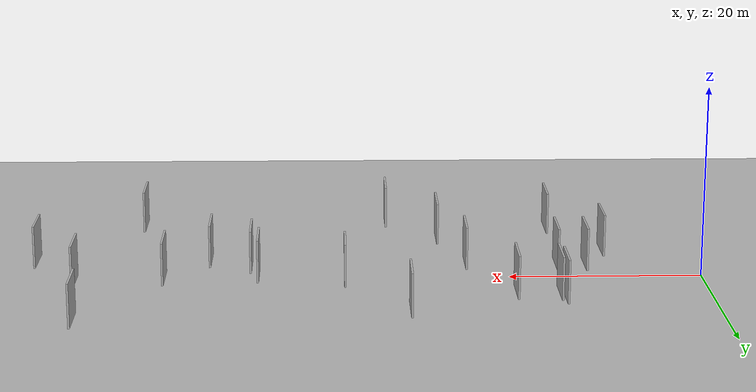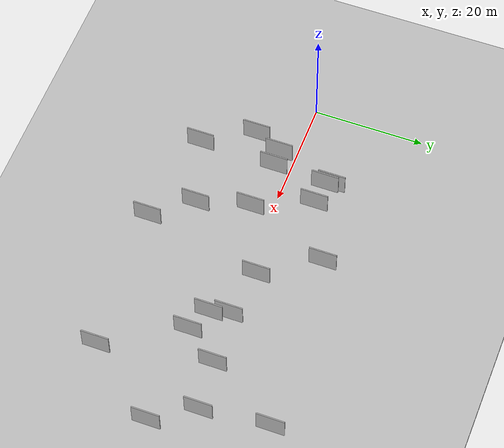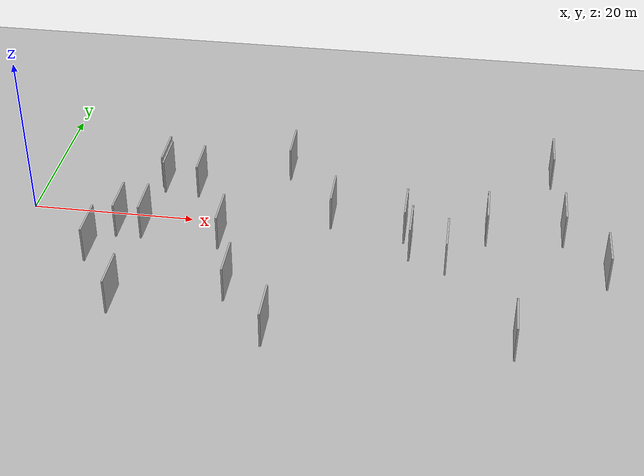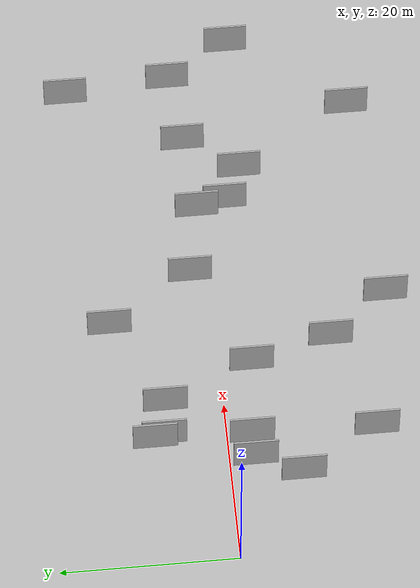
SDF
<?xml version="1.0" encoding="utf-8"?>

<sdf version="1.6">

   <world name="default">

      <gui fullscreen="0">

         <camera name="user_camera">

            <pose>-15 0 4.57585 0 0 0</pose>

            <view_controller>orbit</view_controller>

         </camera>

      </gui>

      <scene>

         <sky>

           <clouds>

             <speed>12</speed>

           </clouds>

         </sky>

         <ambient>0.4 0.4 0.4 1</ambient>

         <background>0.7 0.7 0.7 1</background>

         <shadows>1</shadows>

      </scene>

      <gravity>0 0 -9.8066</gravity>

      <magnetic_field>6e-06 2.3e-05 -4.2e-05</magnetic_field>

      <physics default="0" name="default_physics" type="ode">

         <ode>

            <solver>

               <type>quick</type>

               <iters>10</iters>

               <sor>1.0</sor>

               <use_dynamic_moi_rescaling>0</use_dynamic_moi_rescaling>

            </solver>

            <constraints>

               <cfm>0</cfm>

               <erp>0.2</erp>

               <contact_max_correcting_vel>100</contact_max_correcting_vel>

               <contact_surface_layer>0.001</contact_surface_layer>

            </constraints>

         </ode>

         <max_step_size>0.004</max_step_size>

         <real_time_factor>1</real_time_factor>

         <real_time_update_rate>250</real_time_update_rate>

      </physics>

      <light name="sun" type="directional">

         <cast_shadows>1</cast_shadows>

         <pose>0 0 10 0 0 0</pose>

         <diffuse>0.8 0.8 0.8 1</diffuse>

         <specular>0.2 0.2 0.2 1</specular>

         <attenuation>

            <range>1000</range>

            <constant>0.9</constant>

            <linear>0.01</linear>

            <quadratic>0.001</quadratic>

         </attenuation>

         <direction>-0.5 0.1 -0.9</direction>

      </light>

      <include>

         <name>ground_plane_1</name>

         <uri>model://HANNAS_ground_plane</uri>

         <pose>0 0 0  0 0 0</pose>

      </include>

      <include>

         <name>ground_plane_2</name>

         <uri>model://HANNAS_ground_plane</uri>

         <pose>100 0 0  0 0 0</pose>

      </include>

      <model name="HANNAS_wall_1">

         <static>1</static>

         <pose frame="">55.7279 1.5356 0.0 0.000000 0.000000 1.570796</pose>

         <link name="link">

            <pose frame="">0 0 2.50 0 0 0</pose>

            <collision name="collision">

               <geometry>

                  <box>

                     <size>5.00 0.2 5.00</size>

                  </box>

               </geometry>

               <max_contacts>10</max_contacts>

               <surface>

                  <contact>

                     <ode/>

                  </contact>

                  <bounce/>

                  <friction>

                     <torsional>

                        <ode/>

                     </torsional>

                     <ode/>

                  </friction>

               </surface>

            </collision>

            <visual name="visual">

               <cast_shadows>0</cast_shadows>

               <geometry>

                  <box>

                     <size>5.00 0.2 5.00</size>

                  </box>

               </geometry>

               <material>

                  <script>

                     <uri>model://HANNAS_wall/materials/scripts</uri>

                     <uri>model://HANNAS_wall/materials/textures</uri>

                     <name>vrc/HANNAS_wall</name>

                  </script>

               </material>

            </visual>

            <self_collide>0</self_collide>

            <enable_wind>0</enable_wind>

            <kinematic>0</kinematic>

         </link>

      </model>

      <model name="HANNAS_wall_2">

         <static>1</static>

         <pose frame="">37.1053 2.2786 0.0 0.000000 0.000000 1.570796</pose>

         <link name="link">

            <pose frame="">0 0 2.50 0 0 0</pose>

            <collision name="collision">

               <geometry>

                  <box>

                     <size>5.00 0.2 5.00</size>

                  </box>

               </geometry>

               <max_contacts>10</max_contacts>

               <surface>

                  <contact>

                     <ode/>

                  </contact>

                  <bounce/>

                  <friction>

                     <torsional>

                        <ode/>

                     </torsional>

                     <ode/>

                  </friction>

               </surface>

            </collision>

            <visual name="visual">

               <cast_shadows>0</cast_shadows>

               <geometry>

                  <box>

                     <size>5.00 0.2 5.00</size>

                  </box>

               </geometry>

               <material>

                  <script>

                     <uri>model://HANNAS_wall/materials/scripts</uri>

                     <uri>model://HANNAS_wall/materials/textures</uri>

                     <name>vrc/HANNAS_wall</name>

                  </script>

               </material>

            </visual>

            <self_collide>0</self_collide>

            <enable_wind>0</enable_wind>

            <kinematic>0</kinematic>

         </link>

      </model>

      <model name="HANNAS_wall_3">

         <static>1</static>

         <pose frame="">24.3750 -3.5481 0.0 0.000000 0.000000 1.570796</pose>

         <link name="link">

            <pose frame="">0 0 2.50 0 0 0</pose>

            <collision name="collision">

               <geometry>

                  <box>

                     <size>5.00 0.2 5.00</size>

                  </box>

               </geometry>

               <max_contacts>10</max_contacts>

               <surface>

                  <contact>

                     <ode/>

                  </contact>

                  <bounce/>

                  <friction>

                     <torsional>

                        <ode/>

                     </torsional>

                     <ode/>

                  </friction>

               </surface>

            </collision>

            <visual name="visual">

               <cast_shadows>0</cast_shadows>

               <geometry>

                  <box>

                     <size>5.00 0.2 5.00</size>

                  </box>

               </geometry>

               <material>

                  <script>

                     <uri>model://HANNAS_wall/materials/scripts</uri>

                     <uri>model://HANNAS_wall/materials/textures</uri>

                     <name>vrc/HANNAS_wall</name>

                  </script>

               </material>

            </visual>

            <self_collide>0</self_collide>

            <enable_wind>0</enable_wind>

            <kinematic>0</kinematic>

         </link>

      </model>

      <model name="HANNAS_wall_4">

         <static>1</static>

         <pose frame="">63.5982 14.6535 0.0 0.000000 0.000000 1.570796</pose>

         <link name="link">

            <pose frame="">0 0 2.50 0 0 0</pose>

            <collision name="collision">

               <geometry>

                  <box>

                     <size>5.00 0.2 5.00</size>

                  </box>

               </geometry>

               <max_contacts>10</max_contacts>

               <surface>

                  <contact>

                     <ode/>

                  </contact>

                  <bounce/>

                  <friction>

                     <torsional>

                        <ode/>

                     </torsional>

                     <ode/>

                  </friction>

               </surface>

            </collision>

            <visual name="visual">

               <cast_shadows>0</cast_shadows>

               <geometry>

                  <box>

                     <size>5.00 0.2 5.00</size>

                  </box>

               </geometry>

               <material>

                  <script>

                     <uri>model://HANNAS_wall/materials/scripts</uri>

                     <uri>model://HANNAS_wall/materials/textures</uri>

                     <name>vrc/HANNAS_wall</name>

                  </script>

               </material>

            </visual>

            <self_collide>0</self_collide>

            <enable_wind>0</enable_wind>

            <kinematic>0</kinematic>

         </link>

      </model>

      <model name="HANNAS_wall_5">

         <static>1</static>

         <pose frame="">64.8098 2.5495 0.0 0.000000 0.000000 1.570796</pose>

         <link name="link">

            <pose frame="">0 0 2.50 0 0 0</pose>

            <collision name="collision">

               <geometry>

                  <box>

                     <size>5.00 0.2 5.00</size>

                  </box>

               </geometry>

               <max_contacts>10</max_contacts>

               <surface>

                  <contact>

                     <ode/>

                  </contact>

                  <bounce/>

                  <friction>

                     <torsional>

                        <ode/>

                     </torsional>

                     <ode/>

                  </friction>

               </surface>

            </collision>

            <visual name="visual">

               <cast_shadows>0</cast_shadows>

               <geometry>

                  <box>

                     <size>5.00 0.2 5.00</size>

                  </box>

               </geometry>

               <material>

                  <script>

                     <uri>model://HANNAS_wall/materials/scripts</uri>

                     <uri>model://HANNAS_wall/materials/textures</uri>

                     <name>vrc/HANNAS_wall</name>

                  </script>

               </material>

            </visual>

            <self_collide>0</self_collide>

            <enable_wind>0</enable_wind>

            <kinematic>0</kinematic>

         </link>

      </model>

      <model name="HANNAS_wall_6">

         <static>1</static>

         <pose frame="">15.4837 7.0637 0.0 0.000000 0.000000 1.570796</pose>

         <link name="link">

            <pose frame="">0 0 2.50 0 0 0</pose>

            <collision name="collision">

               <geometry>

                  <box>

                     <size>5.00 0.2 5.00</size>

                  </box>

               </geometry>

               <max_contacts>10</max_contacts>

               <surface>

                  <contact>

                     <ode/>

                  </contact>

                  <bounce/>

                  <friction>

                     <torsional>

                        <ode/>

                     </torsional>

                     <ode/>

                  </friction>

               </surface>

            </collision>

            <visual name="visual">

               <cast_shadows>0</cast_shadows>

               <geometry>

                  <box>

                     <size>5.00 0.2 5.00</size>

                  </box>

               </geometry>

               <material>

                  <script>

                     <uri>model://HANNAS_wall/materials/scripts</uri>

                     <uri>model://HANNAS_wall/materials/textures</uri>

                     <name>vrc/HANNAS_wall</name>

                  </script>

               </material>

            </visual>

            <self_collide>0</self_collide>

            <enable_wind>0</enable_wind>

            <kinematic>0</kinematic>

         </link>

      </model>

      <model name="HANNAS_wall_7">

         <static>1</static>

         <pose frame="">26.9392 -12.7928 0.0 0.000000 0.000000 1.570796</pose>

         <link name="link">

            <pose frame="">0 0 2.50 0 0 0</pose>

            <collision name="collision">

               <geometry>

                  <box>

                     <size>5.00 0.2 5.00</size>

                  </box>

               </geometry>

               <max_contacts>10</max_contacts>

               <surface>

                  <contact>

                     <ode/>

                  </contact>

                  <bounce/>

                  <friction>

                     <torsional>

                        <ode/>

                     </torsional>

                     <ode/>

                  </friction>

               </surface>

            </collision>

            <visual name="visual">

               <cast_shadows>0</cast_shadows>

               <geometry>

                  <box>

                     <size>5.00 0.2 5.00</size>

                  </box>

               </geometry>

               <material>

                  <script>

                     <uri>model://HANNAS_wall/materials/scripts</uri>

                     <uri>model://HANNAS_wall/materials/textures</uri>

                     <name>vrc/HANNAS_wall</name>

                  </script>

               </material>

            </visual>

            <self_collide>0</self_collide>

            <enable_wind>0</enable_wind>

            <kinematic>0</kinematic>

         </link>

      </model>

      <model name="HANNAS_wall_8">

         <static>1</static>

         <pose frame="">30.7021 12.0385 0.0 0.000000 0.000000 1.570796</pose>

         <link name="link">

            <pose frame="">0 0 2.50 0 0 0</pose>

            <collision name="collision">

               <geometry>

                  <box>

                     <size>5.00 0.2 5.00</size>

                  </box>

               </geometry>

               <max_contacts>10</max_contacts>

               <surface>

                  <contact>

                     <ode/>

                  </contact>

                  <bounce/>

                  <friction>

                     <torsional>

                        <ode/>

                     </torsional>

                     <ode/>

                  </friction>

               </surface>

            </collision>

            <visual name="visual">

               <cast_shadows>0</cast_shadows>

               <geometry>

                  <box>

                     <size>5.00 0.2 5.00</size>

                  </box>

               </geometry>

               <material>

                  <script>

                     <uri>model://HANNAS_wall/materials/scripts</uri>

                     <uri>model://HANNAS_wall/materials/textures</uri>

                     <name>vrc/HANNAS_wall</name>

                  </script>

               </material>

            </visual>

            <self_collide>0</self_collide>

            <enable_wind>0</enable_wind>

            <kinematic>0</kinematic>

         </link>

      </model>

      <model name="HANNAS_wall_9">

         <static>1</static>

         <pose frame="">19.8360 6.5995 0.0 0.000000 0.000000 1.570796</pose>

         <link name="link">

            <pose frame="">0 0 2.50 0 0 0</pose>

            <collision name="collision">

               <geometry>

                  <box>

                     <size>5.00 0.2 5.00</size>

                  </box>

               </geometry>

               <max_contacts>10</max_contacts>

               <surface>

                  <contact>

                     <ode/>

                  </contact>

                  <bounce/>

                  <friction>

                     <torsional>

                        <ode/>

                     </torsional>

                     <ode/>

                  </friction>

               </surface>

            </collision>

            <visual name="visual">

               <cast_shadows>0</cast_shadows>

               <geometry>

                  <box>

                     <size>5.00 0.2 5.00</size>

                  </box>

               </geometry>

               <material>

                  <script>

                     <uri>model://HANNAS_wall/materials/scripts</uri>

                     <uri>model://HANNAS_wall/materials/textures</uri>

                     <name>vrc/HANNAS_wall</name>

                  </script>

               </material>

            </visual>

            <self_collide>0</self_collide>

            <enable_wind>0</enable_wind>

            <kinematic>0</kinematic>

         </link>

      </model>

      <model name="HANNAS_wall_10">

         <static>1</static>

         <pose frame="">14.8566 -2.7166 0.0 0.000000 0.000000 1.570796</pose>

         <link name="link">

            <pose frame="">0 0 2.50 0 0 0</pose>

            <collision name="collision">

               <geometry>

                  <box>

                     <size>5.00 0.2 5.00</size>

                  </box>

               </geometry>

               <max_contacts>10</max_contacts>

               <surface>

                  <contact>

                     <ode/>

                  </contact>

                  <bounce/>

                  <friction>

                     <torsional>

                        <ode/>

                     </torsional>

                     <ode/>

                  </friction>

               </surface>

            </collision>

            <visual name="visual">

               <cast_shadows>0</cast_shadows>

               <geometry>

                  <box>

                     <size>5.00 0.2 5.00</size>

                  </box>

               </geometry>

               <material>

                  <script>

                     <uri>model://HANNAS_wall/materials/scripts</uri>

                     <uri>model://HANNAS_wall/materials/textures</uri>

                     <name>vrc/HANNAS_wall</name>

                  </script>

               </material>

            </visual>

            <self_collide>0</self_collide>

            <enable_wind>0</enable_wind>

            <kinematic>0</kinematic>

         </link>

      </model>

      <model name="HANNAS_wall_11">

         <static>1</static>

         <pose frame="">9.4200 -7.9619 0.0 0.000000 0.000000 1.570796</pose>

         <link name="link">

            <pose frame="">0 0 2.50 0 0 0</pose>

            <collision name="collision">

               <geometry>

                  <box>

                     <size>5.00 0.2 5.00</size>

                  </box>

               </geometry>

               <max_contacts>10</max_contacts>

               <surface>

                  <contact>

                     <ode/>

                  </contact>

                  <bounce/>

                  <friction>

                     <torsional>

                        <ode/>

                     </torsional>

                     <ode/>

                  </friction>

               </surface>

            </collision>

            <visual name="visual">

               <cast_shadows>0</cast_shadows>

               <geometry>

                  <box>

                     <size>5.00 0.2 5.00</size>

                  </box>

               </geometry>

               <material>

                  <script>

                     <uri>model://HANNAS_wall/materials/scripts</uri>

                     <uri>model://HANNAS_wall/materials/textures</uri>

                     <name>vrc/HANNAS_wall</name>

                  </script>

               </material>

            </visual>

            <self_collide>0</self_collide>

            <enable_wind>0</enable_wind>

            <kinematic>0</kinematic>

         </link>

      </model>

      <model name="HANNAS_wall_12">

         <static>1</static>

         <pose frame="">51.2201 -4.6584 0.0 0.000000 0.000000 1.570796</pose>

         <link name="link">

            <pose frame="">0 0 2.50 0 0 0</pose>

            <collision name="collision">

               <geometry>

                  <box>

                     <size>5.00 0.2 5.00</size>

                  </box>

               </geometry>

               <max_contacts>10</max_contacts>

               <surface>

                  <contact>

                     <ode/>

                  </contact>

                  <bounce/>

                  <friction>

                     <torsional>

                        <ode/>

                     </torsional>

                     <ode/>

                  </friction>

               </surface>

            </collision>

            <visual name="visual">

               <cast_shadows>0</cast_shadows>

               <geometry>

                  <box>

                     <size>5.00 0.2 5.00</size>

                  </box>

               </geometry>

               <material>

                  <script>

                     <uri>model://HANNAS_wall/materials/scripts</uri>

                     <uri>model://HANNAS_wall/materials/textures</uri>

                     <name>vrc/HANNAS_wall</name>

                  </script>

               </material>

            </visual>

            <self_collide>0</self_collide>

            <enable_wind>0</enable_wind>

            <kinematic>0</kinematic>

         </link>

      </model>

      <model name="HANNAS_wall_13">

         <static>1</static>

         <pose frame="">32.3725 -19.6363 0.0 0.000000 0.000000 1.570796</pose>

         <link name="link">

            <pose frame="">0 0 2.50 0 0 0</pose>

            <collision name="collision">

               <geometry>

                  <box>

                     <size>5.00 0.2 5.00</size>

                  </box>

               </geometry>

               <max_contacts>10</max_contacts>

               <surface>

                  <contact>

                     <ode/>

                  </contact>

                  <bounce/>

                  <friction>

                     <torsional>

                        <ode/>

                     </torsional>

                     <ode/>

                  </friction>

               </surface>

            </collision>

            <visual name="visual">

               <cast_shadows>0</cast_shadows>

               <geometry>

                  <box>

                     <size>5.00 0.2 5.00</size>

                  </box>

               </geometry>

               <material>

                  <script>

                     <uri>model://HANNAS_wall/materials/scripts</uri>

                     <uri>model://HANNAS_wall/materials/textures</uri>

                     <name>vrc/HANNAS_wall</name>

                  </script>

               </material>

            </visual>

            <self_collide>0</self_collide>

            <enable_wind>0</enable_wind>

            <kinematic>0</kinematic>

         </link>

      </model>

      <model name="HANNAS_wall_14">

         <static>1</static>

         <pose frame="">14.5596 -16.6720 0.0 0.000000 0.000000 1.570796</pose>

         <link name="link">

            <pose frame="">0 0 2.50 0 0 0</pose>

            <collision name="collision">

               <geometry>

                  <box>

                     <size>5.00 0.2 5.00</size>

                  </box>

               </geometry>

               <max_contacts>10</max_contacts>

               <surface>

                  <contact>

                     <ode/>

                  </contact>

                  <bounce/>

                  <friction>

                     <torsional>

                        <ode/>

                     </torsional>

                     <ode/>

                  </friction>

               </surface>

            </collision>

            <visual name="visual">

               <cast_shadows>0</cast_shadows>

               <geometry>

                  <box>

                     <size>5.00 0.2 5.00</size>

                  </box>

               </geometry>

               <material>

                  <script>

                     <uri>model://HANNAS_wall/materials/scripts</uri>

                     <uri>model://HANNAS_wall/materials/textures</uri>

                     <name>vrc/HANNAS_wall</name>

                  </script>

               </material>

            </visual>

            <self_collide>0</self_collide>

            <enable_wind>0</enable_wind>

            <kinematic>0</kinematic>

         </link>

      </model>

      <model name="HANNAS_wall_15">

         <static>1</static>

         <pose frame="">46.8936 -2.6037 0.0 0.000000 0.000000 1.570796</pose>

         <link name="link">

            <pose frame="">0 0 2.50 0 0 0</pose>

            <collision name="collision">

               <geometry>

                  <box>

                     <size>5.00 0.2 5.00</size>

                  </box>

               </geometry>

               <max_contacts>10</max_contacts>

               <surface>

                  <contact>

                     <ode/>

                  </contact>

                  <bounce/>

                  <friction>

                     <torsional>

                        <ode/>

                     </torsional>

                     <ode/>

                  </friction>

               </surface>

            </collision>

            <visual name="visual">

               <cast_shadows>0</cast_shadows>

               <geometry>

                  <box>

                     <size>5.00 0.2 5.00</size>

                  </box>

               </geometry>

               <material>

                  <script>

                     <uri>model://HANNAS_wall/materials/scripts</uri>

                     <uri>model://HANNAS_wall/materials/textures</uri>

                     <name>vrc/HANNAS_wall</name>

                  </script>

               </material>

            </visual>

            <self_collide>0</self_collide>

            <enable_wind>0</enable_wind>

            <kinematic>0</kinematic>

         </link>

      </model>

      <model name="HANNAS_wall_16">

         <static>1</static>

         <pose frame="">46.0465 0.7166 0.0 0.000000 0.000000 1.570796</pose>

         <link name="link">

            <pose frame="">0 0 2.50 0 0 0</pose>

            <collision name="collision">

               <geometry>

                  <box>

                     <size>5.00 0.2 5.00</size>

                  </box>

               </geometry>

               <max_contacts>10</max_contacts>

               <surface>

                  <contact>

                     <ode/>

                  </contact>

                  <bounce/>

                  <friction>

                     <torsional>

                        <ode/>

                     </torsional>

                     <ode/>

                  </friction>

               </surface>

            </collision>

            <visual name="visual">

               <cast_shadows>0</cast_shadows>

               <geometry>

                  <box>

                     <size>5.00 0.2 5.00</size>

                  </box>

               </geometry>

               <material>

                  <script>

                     <uri>model://HANNAS_wall/materials/scripts</uri>

                     <uri>model://HANNAS_wall/materials/textures</uri>

                     <name>vrc/HANNAS_wall</name>

                  </script>

               </material>

            </visual>

            <self_collide>0</self_collide>

            <enable_wind>0</enable_wind>

            <kinematic>0</kinematic>

         </link>

      </model>

      <model name="HANNAS_wall_17">

         <static>1</static>

         <pose frame="">11.8187 -2.8284 0.0 0.000000 0.000000 1.570796</pose>

         <link name="link">

            <pose frame="">0 0 2.50 0 0 0</pose>

            <collision name="collision">

               <geometry>

                  <box>

                     <size>5.00 0.2 5.00</size>

                  </box>

               </geometry>

               <max_contacts>10</max_contacts>

               <surface>

                  <contact>

                     <ode/>

                  </contact>

                  <bounce/>

                  <friction>

                     <torsional>

                        <ode/>

                     </torsional>

                     <ode/>

                  </friction>

               </surface>

            </collision>

            <visual name="visual">

               <cast_shadows>0</cast_shadows>

               <geometry>

                  <box>

                     <size>5.00 0.2 5.00</size>

                  </box>

               </geometry>

               <material>

                  <script>

                     <uri>model://HANNAS_wall/materials/scripts</uri>

                     <uri>model://HANNAS_wall/materials/textures</uri>

                     <name>vrc/HANNAS_wall</name>

                  </script>

               </material>

            </visual>

            <self_collide>0</self_collide>

            <enable_wind>0</enable_wind>

            <kinematic>0</kinematic>

         </link>

      </model>

      <model name="HANNAS_wall_18">

         <static>1</static>

         <pose frame="">69.5611 -4.7737 0.0 0.000000 0.000000 1.570796</pose>

         <link name="link">

            <pose frame="">0 0 2.50 0 0 0</pose>

            <collision name="collision">

               <geometry>

                  <box>

                     <size>5.00 0.2 5.00</size>

                  </box>

               </geometry>

               <max_contacts>10</max_contacts>

               <surface>

                  <contact>

                     <ode/>

                  </contact>

                  <bounce/>

                  <friction>

                     <torsional>

                        <ode/>

                     </torsional>

                     <ode/>

                  </friction>

               </surface>

            </collision>

            <visual name="visual">

               <cast_shadows>0</cast_shadows>

               <geometry>

                  <box>

                     <size>5.00 0.2 5.00</size>

                  </box>

               </geometry>

               <material>

                  <script>

                     <uri>model://HANNAS_wall/materials/scripts</uri>

                     <uri>model://HANNAS_wall/materials/textures</uri>

                     <name>vrc/HANNAS_wall</name>

                  </script>

               </material>

            </visual>

            <self_collide>0</self_collide>

            <enable_wind>0</enable_wind>

            <kinematic>0</kinematic>

         </link>

      </model>

      <model name="HANNAS_wall_19">

         <static>1</static>

         <pose frame="">59.2089 -18.0524 0.0 0.000000 0.000000 1.570796</pose>

         <link name="link">

            <pose frame="">0 0 2.50 0 0 0</pose>

            <collision name="collision">

               <geometry>

                  <box>

                     <size>5.00 0.2 5.00</size>

                  </box>

               </geometry>

               <max_contacts>10</max_contacts>

               <surface>

                  <contact>

                     <ode/>

                  </contact>

                  <bounce/>

                  <friction>

                     <torsional>

                        <ode/>

                     </torsional>

                     <ode/>

                  </friction>

               </surface>

            </collision>

            <visual name="visual">

               <cast_shadows>0</cast_shadows>

               <geometry>

                  <box>

                     <size>5.00 0.2 5.00</size>

                  </box>

               </geometry>

               <material>

                  <script>

                     <uri>model://HANNAS_wall/materials/scripts</uri>

                     <uri>model://HANNAS_wall/materials/textures</uri>

                     <name>vrc/HANNAS_wall</name>

                  </script>

               </material>

            </visual>

            <self_collide>0</self_collide>

            <enable_wind>0</enable_wind>

            <kinematic>0</kinematic>

         </link>

      </model>

      <model name="HANNAS_wall_20">

         <static>1</static>

         <pose frame="">15.0467 8.1284 0.0 0.000000 0.000000 1.570796</pose>

         <link name="link">

            <pose frame="">0 0 2.50 0 0 0</pose>

            <collision name="collision">

               <geometry>

                  <box>

                     <size>5.00 0.2 5.00</size>

                  </box>

               </geometry>

               <max_contacts>10</max_contacts>

               <surface>

                  <contact>

                     <ode/>

                  </contact>

                  <bounce/>

                  <friction>

                     <torsional>

                        <ode/>

                     </torsional>

                     <ode/>

                  </friction>

               </surface>

            </collision>

            <visual name="visual">

               <cast_shadows>0</cast_shadows>

               <geometry>

                  <box>

                     <size>5.00 0.2 5.00</size>

                  </box>

               </geometry>

               <material>

                  <script>

                     <uri>model://HANNAS_wall/materials/scripts</uri>

                     <uri>model://HANNAS_wall/materials/textures</uri>

                     <name>vrc/HANNAS_wall</name>

                  </script>

               </material>

            </visual>

            <self_collide>0</self_collide>

            <enable_wind>0</enable_wind>

            <kinematic>0</kinematic>

         </link>

      </model>

   </world>

</sdf>

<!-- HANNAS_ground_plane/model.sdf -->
<sdf version="1.4">
<model name="HANNAS_ground_plane">
  <static>true</static>
    <link name="link">
      <collision name="collision">
        <geometry>
          <plane>
            <normal>0 0 1</normal>
            <size>1000 1000</size>
          </plane>
        </geometry>
        <surface>
          <friction>
            <ode>
              <mu>100</mu>
              <mu2>50</mu2>
            </ode>
          </friction>
        </surface>
      </collision>
      <visual name="visual">
        <cast_shadows>false</cast_shadows>
        <geometry>
          <plane>
            <normal>0 0 1</normal>
            <size>1000 1000</size>
          </plane>
        </geometry>
        <material>
          <script>
            <uri>model://HANNAS_ground_plane/materials/scripts/HANNAS_ground_plane.material</uri>
	    <uri>model://HANNAS_ground_plane/materials/textures</uri>
            <name>HANNASGroundPlane/Image</name>
          </script>
        </material>
      </visual>
    </link>
  </model>
</sdf>
